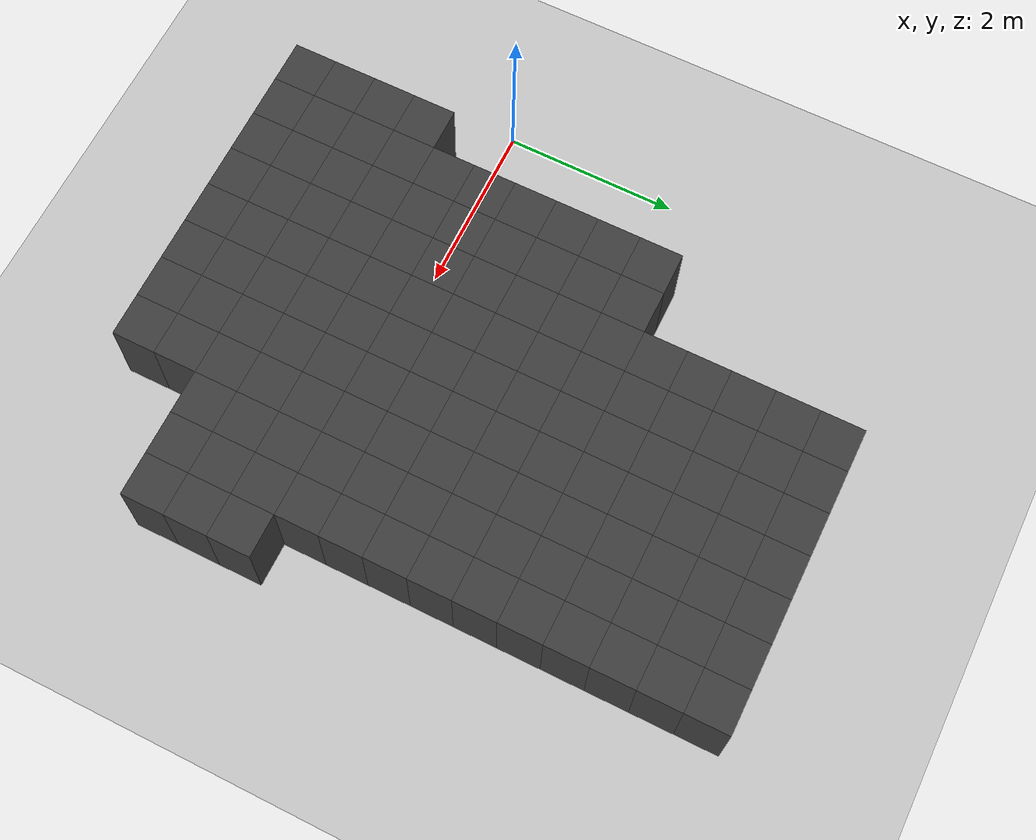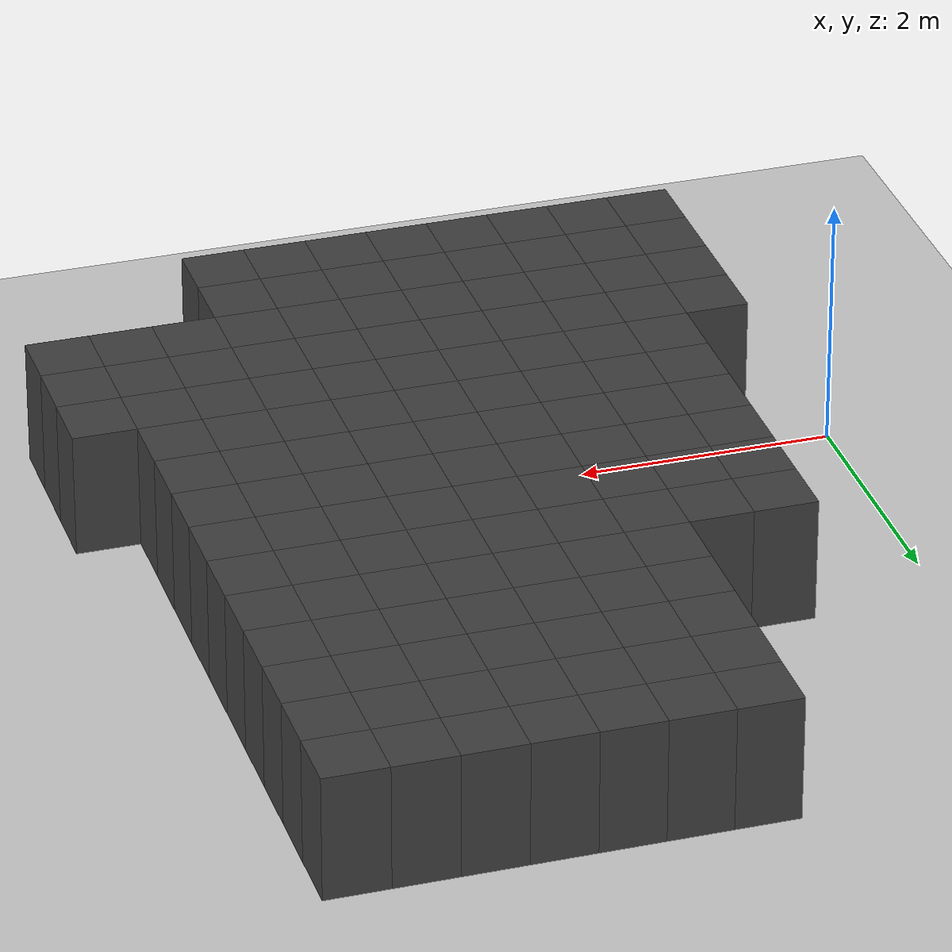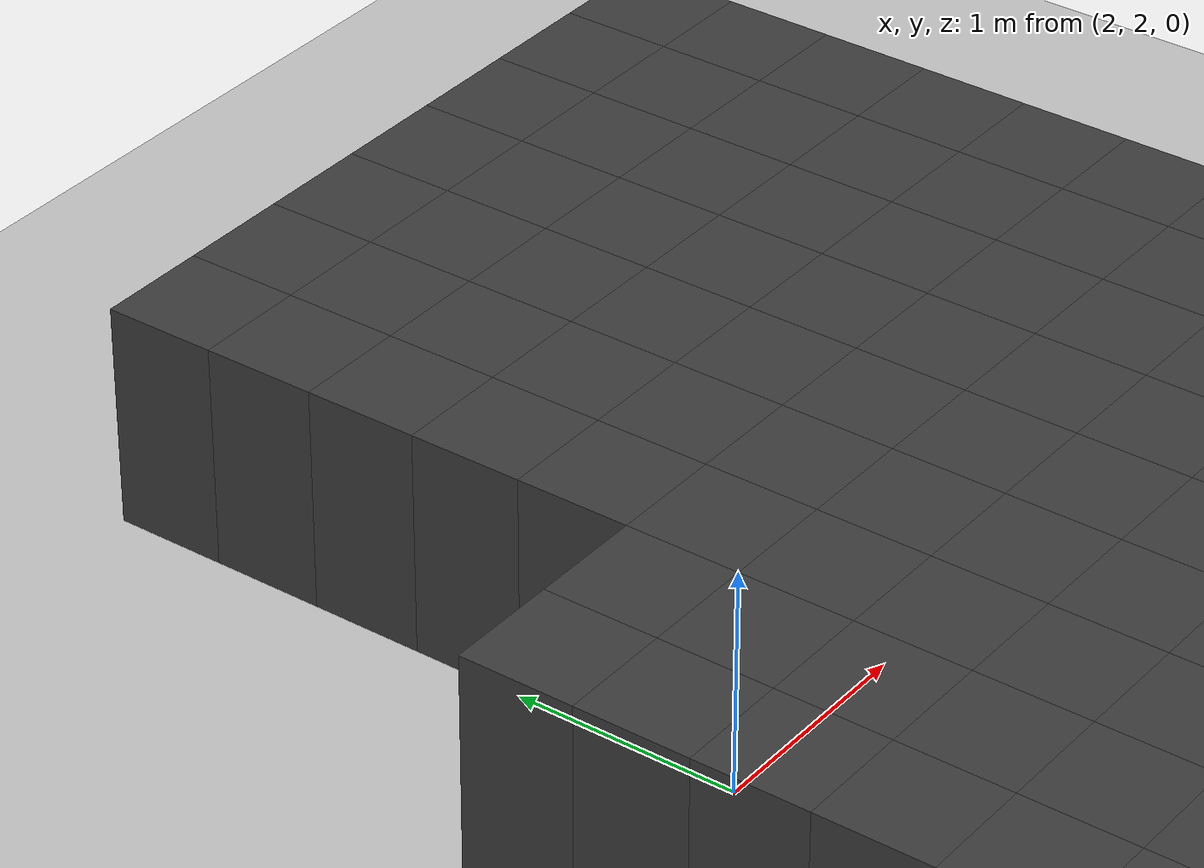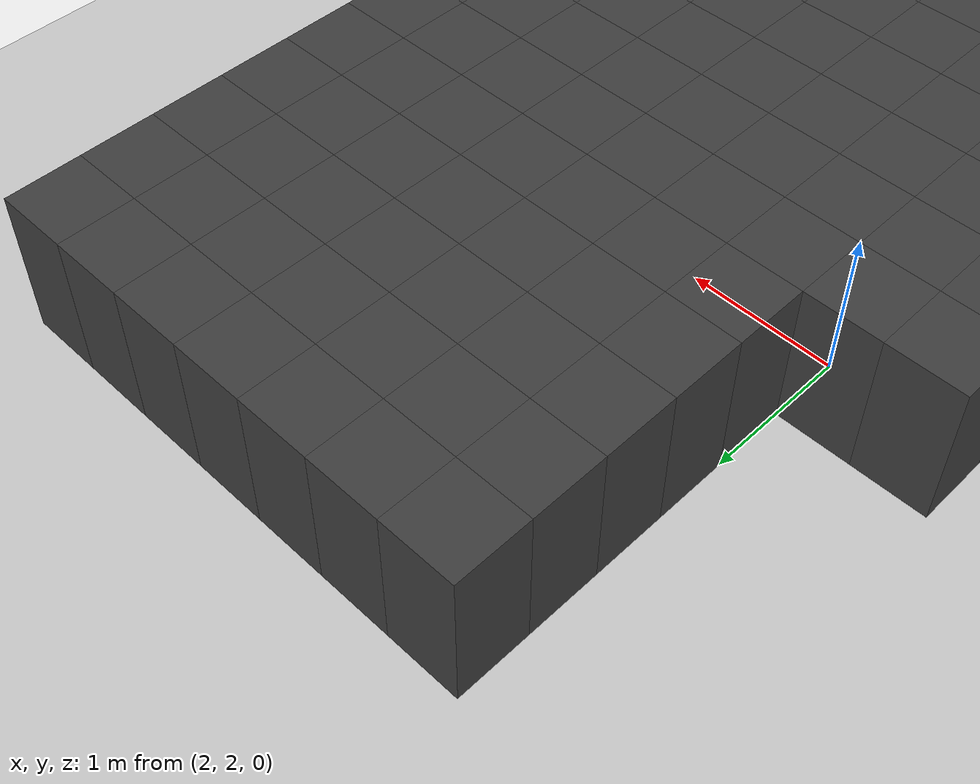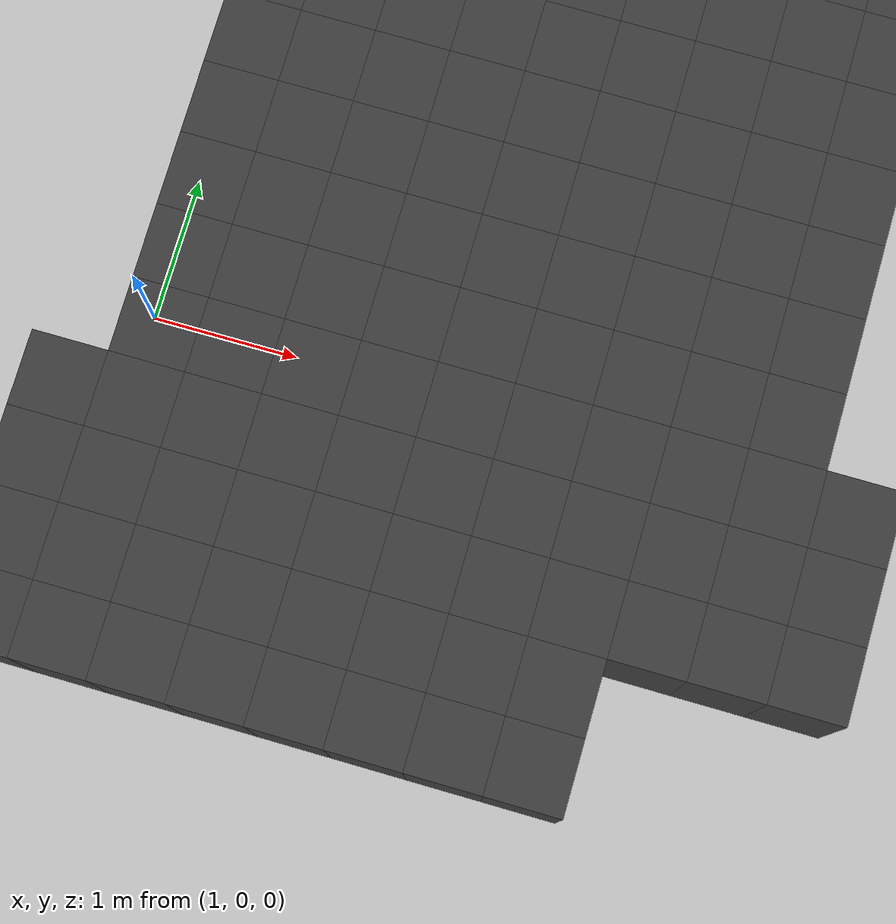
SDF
<sdf version="1.7">
 <world name="map_14980">
  <model name="ground_plane">
   <static>true</static>
   <link name="link">
    <collision name="collision">
     <geometry><plane><normal>0 0 1</normal><size>200 200</size></plane></geometry>
    </collision>
    <visual name="visual">
     <geometry><plane><normal>0 0 1</normal><size>200 200</size></plane></geometry>
     <material><ambient>0.8 0.8 0.8 1</ambient><diffuse>0.8 0.8 0.8 1</diffuse></material>
    </visual>
   </link>
  </model>
  <model name="maze_environment">
   <static>true</static>
   <link name="wall_570">
    <pose>2.250 4.750 0.500 0 0 0</pose>
    <collision name="col"><geometry><box><size>0.5 0.5 1.0</size></box></geometry></collision>
    <visual name="vis">
     <geometry><box><size>0.5 0.5 1.0</size></box></geometry>
     <material><ambient>0.15 0.15 0.15 1</ambient><diffuse>0.25 0.25 0.25 1</diffuse></material>
    </visual>
   </link>
   <link name="wall_571">
    <pose>2.750 4.750 0.500 0 0 0</pose>
    <collision name="col"><geometry><box><size>0.5 0.5 1.0</size></box></geometry></collision>
    <visual name="vis">
     <geometry><box><size>0.5 0.5 1.0</size></box></geometry>
     <material><ambient>0.15 0.15 0.15 1</ambient><diffuse>0.25 0.25 0.25 1</diffuse></material>
    </visual>
   </link>
   <link name="wall_572">
    <pose>3.250 4.750 0.500 0 0 0</pose>
    <collision name="col"><geometry><box><size>0.5 0.5 1.0</size></box></geometry></collision>
    <visual name="vis">
     <geometry><box><size>0.5 0.5 1.0</size></box></geometry>
     <material><ambient>0.15 0.15 0.15 1</ambient><diffuse>0.25 0.25 0.25 1</diffuse></material>
    </visual>
   </link>
   <link name="wall_573">
    <pose>3.750 4.750 0.500 0 0 0</pose>
    <collision name="col"><geometry><box><size>0.5 0.5 1.0</size></box></geometry></collision>
    <visual name="vis">
     <geometry><box><size>0.5 0.5 1.0</size></box></geometry>
     <material><ambient>0.15 0.15 0.15 1</ambient><diffuse>0.25 0.25 0.25 1</diffuse></material>
    </visual>
   </link>
   <link name="wall_574">
    <pose>4.250 4.750 0.500 0 0 0</pose>
    <collision name="col"><geometry><box><size>0.5 0.5 1.0</size></box></geometry></collision>
    <visual name="vis">
     <geometry><box><size>0.5 0.5 1.0</size></box></geometry>
     <material><ambient>0.15 0.15 0.15 1</ambient><diffuse>0.25 0.25 0.25 1</diffuse></material>
    </visual>
   </link>
   <link name="wall_575">
    <pose>4.750 4.750 0.500 0 0 0</pose>
    <collision name="col"><geometry><box><size>0.5 0.5 1.0</size></box></geometry></collision>
    <visual name="vis">
     <geometry><box><size>0.5 0.5 1.0</size></box></geometry>
     <material><ambient>0.15 0.15 0.15 1</ambient><diffuse>0.25 0.25 0.25 1</diffuse></material>
    </visual>
   </link>
   <link name="wall_576">
    <pose>5.250 4.750 0.500 0 0 0</pose>
    <collision name="col"><geometry><box><size>0.5 0.5 1.0</size></box></geometry></collision>
    <visual name="vis">
     <geometry><box><size>0.5 0.5 1.0</size></box></geometry>
     <material><ambient>0.15 0.15 0.15 1</ambient><diffuse>0.25 0.25 0.25 1</diffuse></material>
    </visual>
   </link>
   <link name="wall_593">
    <pose>2.250 4.250 0.500 0 0 0</pose>
    <collision name="col"><geometry><box><size>0.5 0.5 1.0</size></box></geometry></collision>
    <visual name="vis">
     <geometry><box><size>0.5 0.5 1.0</size></box></geometry>
     <material><ambient>0.15 0.15 0.15 1</ambient><diffuse>0.25 0.25 0.25 1</diffuse></material>
    </visual>
   </link>
   <link name="wall_594">
    <pose>2.750 4.250 0.500 0 0 0</pose>
    <collision name="col"><geometry><box><size>0.5 0.5 1.0</size></box></geometry></collision>
    <visual name="vis">
     <geometry><box><size>0.5 0.5 1.0</size></box></geometry>
     <material><ambient>0.15 0.15 0.15 1</ambient><diffuse>0.25 0.25 0.25 1</diffuse></material>
    </visual>
   </link>
   <link name="wall_595">
    <pose>3.250 4.250 0.500 0 0 0</pose>
    <collision name="col"><geometry><box><size>0.5 0.5 1.0</size></box></geometry></collision>
    <visual name="vis">
     <geometry><box><size>0.5 0.5 1.0</size></box></geometry>
     <material><ambient>0.15 0.15 0.15 1</ambient><diffuse>0.25 0.25 0.25 1</diffuse></material>
    </visual>
   </link>
   <link name="wall_596">
    <pose>3.750 4.250 0.500 0 0 0</pose>
    <collision name="col"><geometry><box><size>0.5 0.5 1.0</size></box></geometry></collision>
    <visual name="vis">
     <geometry><box><size>0.5 0.5 1.0</size></box></geometry>
     <material><ambient>0.15 0.15 0.15 1</ambient><diffuse>0.25 0.25 0.25 1</diffuse></material>
    </visual>
   </link>
   <link name="wall_597">
    <pose>4.250 4.250 0.500 0 0 0</pose>
    <collision name="col"><geometry><box><size>0.5 0.5 1.0</size></box></geometry></collision>
    <visual name="vis">
     <geometry><box><size>0.5 0.5 1.0</size></box></geometry>
     <material><ambient>0.15 0.15 0.15 1</ambient><diffuse>0.25 0.25 0.25 1</diffuse></material>
    </visual>
   </link>
   <link name="wall_598">
    <pose>4.750 4.250 0.500 0 0 0</pose>
    <collision name="col"><geometry><box><size>0.5 0.5 1.0</size></box></geometry></collision>
    <visual name="vis">
     <geometry><box><size>0.5 0.5 1.0</size></box></geometry>
     <material><ambient>0.15 0.15 0.15 1</ambient><diffuse>0.25 0.25 0.25 1</diffuse></material>
    </visual>
   </link>
   <link name="wall_599">
    <pose>5.250 4.250 0.500 0 0 0</pose>
    <collision name="col"><geometry><box><size>0.5 0.5 1.0</size></box></geometry></collision>
    <visual name="vis">
     <geometry><box><size>0.5 0.5 1.0</size></box></geometry>
     <material><ambient>0.15 0.15 0.15 1</ambient><diffuse>0.25 0.25 0.25 1</diffuse></material>
    </visual>
   </link>
   <link name="wall_617">
    <pose>2.250 3.750 0.500 0 0 0</pose>
    <collision name="col"><geometry><box><size>0.5 0.5 1.0</size></box></geometry></collision>
    <visual name="vis">
     <geometry><box><size>0.5 0.5 1.0</size></box></geometry>
     <material><ambient>0.15 0.15 0.15 1</ambient><diffuse>0.25 0.25 0.25 1</diffuse></material>
    </visual>
   </link>
   <link name="wall_618">
    <pose>2.750 3.750 0.500 0 0 0</pose>
    <collision name="col"><geometry><box><size>0.5 0.5 1.0</size></box></geometry></collision>
    <visual name="vis">
     <geometry><box><size>0.5 0.5 1.0</size></box></geometry>
     <material><ambient>0.15 0.15 0.15 1</ambient><diffuse>0.25 0.25 0.25 1</diffuse></material>
    </visual>
   </link>
   <link name="wall_619">
    <pose>3.250 3.750 0.500 0 0 0</pose>
    <collision name="col"><geometry><box><size>0.5 0.5 1.0</size></box></geometry></collision>
    <visual name="vis">
     <geometry><box><size>0.5 0.5 1.0</size></box></geometry>
     <material><ambient>0.15 0.15 0.15 1</ambient><diffuse>0.25 0.25 0.25 1</diffuse></material>
    </visual>
   </link>
   <link name="wall_620">
    <pose>3.750 3.750 0.500 0 0 0</pose>
    <collision name="col"><geometry><box><size>0.5 0.5 1.0</size></box></geometry></collision>
    <visual name="vis">
     <geometry><box><size>0.5 0.5 1.0</size></box></geometry>
     <material><ambient>0.15 0.15 0.15 1</ambient><diffuse>0.25 0.25 0.25 1</diffuse></material>
    </visual>
   </link>
   <link name="wall_621">
    <pose>4.250 3.750 0.500 0 0 0</pose>
    <collision name="col"><geometry><box><size>0.5 0.5 1.0</size></box></geometry></collision>
    <visual name="vis">
     <geometry><box><size>0.5 0.5 1.0</size></box></geometry>
     <material><ambient>0.15 0.15 0.15 1</ambient><diffuse>0.25 0.25 0.25 1</diffuse></material>
    </visual>
   </link>
   <link name="wall_622">
    <pose>4.750 3.750 0.500 0 0 0</pose>
    <collision name="col"><geometry><box><size>0.5 0.5 1.0</size></box></geometry></collision>
    <visual name="vis">
     <geometry><box><size>0.5 0.5 1.0</size></box></geometry>
     <material><ambient>0.15 0.15 0.15 1</ambient><diffuse>0.25 0.25 0.25 1</diffuse></material>
    </visual>
   </link>
   <link name="wall_623">
    <pose>5.250 3.750 0.500 0 0 0</pose>
    <collision name="col"><geometry><box><size>0.5 0.5 1.0</size></box></geometry></collision>
    <visual name="vis">
     <geometry><box><size>0.5 0.5 1.0</size></box></geometry>
     <material><ambient>0.15 0.15 0.15 1</ambient><diffuse>0.25 0.25 0.25 1</diffuse></material>
    </visual>
   </link>
   <link name="wall_647">
    <pose>2.250 3.250 0.500 0 0 0</pose>
    <collision name="col"><geometry><box><size>0.5 0.5 1.0</size></box></geometry></collision>
    <visual name="vis">
     <geometry><box><size>0.5 0.5 1.0</size></box></geometry>
     <material><ambient>0.15 0.15 0.15 1</ambient><diffuse>0.25 0.25 0.25 1</diffuse></material>
    </visual>
   </link>
   <link name="wall_648">
    <pose>2.750 3.250 0.500 0 0 0</pose>
    <collision name="col"><geometry><box><size>0.5 0.5 1.0</size></box></geometry></collision>
    <visual name="vis">
     <geometry><box><size>0.5 0.5 1.0</size></box></geometry>
     <material><ambient>0.15 0.15 0.15 1</ambient><diffuse>0.25 0.25 0.25 1</diffuse></material>
    </visual>
   </link>
   <link name="wall_649">
    <pose>3.250 3.250 0.500 0 0 0</pose>
    <collision name="col"><geometry><box><size>0.5 0.5 1.0</size></box></geometry></collision>
    <visual name="vis">
     <geometry><box><size>0.5 0.5 1.0</size></box></geometry>
     <material><ambient>0.15 0.15 0.15 1</ambient><diffuse>0.25 0.25 0.25 1</diffuse></material>
    </visual>
   </link>
   <link name="wall_650">
    <pose>3.750 3.250 0.500 0 0 0</pose>
    <collision name="col"><geometry><box><size>0.5 0.5 1.0</size></box></geometry></collision>
    <visual name="vis">
     <geometry><box><size>0.5 0.5 1.0</size></box></geometry>
     <material><ambient>0.15 0.15 0.15 1</ambient><diffuse>0.25 0.25 0.25 1</diffuse></material>
    </visual>
   </link>
   <link name="wall_651">
    <pose>4.250 3.250 0.500 0 0 0</pose>
    <collision name="col"><geometry><box><size>0.5 0.5 1.0</size></box></geometry></collision>
    <visual name="vis">
     <geometry><box><size>0.5 0.5 1.0</size></box></geometry>
     <material><ambient>0.15 0.15 0.15 1</ambient><diffuse>0.25 0.25 0.25 1</diffuse></material>
    </visual>
   </link>
   <link name="wall_652">
    <pose>4.750 3.250 0.500 0 0 0</pose>
    <collision name="col"><geometry><box><size>0.5 0.5 1.0</size></box></geometry></collision>
    <visual name="vis">
     <geometry><box><size>0.5 0.5 1.0</size></box></geometry>
     <material><ambient>0.15 0.15 0.15 1</ambient><diffuse>0.25 0.25 0.25 1</diffuse></material>
    </visual>
   </link>
   <link name="wall_653">
    <pose>5.250 3.250 0.500 0 0 0</pose>
    <collision name="col"><geometry><box><size>0.5 0.5 1.0</size></box></geometry></collision>
    <visual name="vis">
     <geometry><box><size>0.5 0.5 1.0</size></box></geometry>
     <material><ambient>0.15 0.15 0.15 1</ambient><diffuse>0.25 0.25 0.25 1</diffuse></material>
    </visual>
   </link>
   <link name="wall_684">
    <pose>2.250 2.750 0.500 0 0 0</pose>
    <collision name="col"><geometry><box><size>0.5 0.5 1.0</size></box></geometry></collision>
    <visual name="vis">
     <geometry><box><size>0.5 0.5 1.0</size></box></geometry>
     <material><ambient>0.15 0.15 0.15 1</ambient><diffuse>0.25 0.25 0.25 1</diffuse></material>
    </visual>
   </link>
   <link name="wall_685">
    <pose>2.750 2.750 0.500 0 0 0</pose>
    <collision name="col"><geometry><box><size>0.5 0.5 1.0</size></box></geometry></collision>
    <visual name="vis">
     <geometry><box><size>0.5 0.5 1.0</size></box></geometry>
     <material><ambient>0.15 0.15 0.15 1</ambient><diffuse>0.25 0.25 0.25 1</diffuse></material>
    </visual>
   </link>
   <link name="wall_686">
    <pose>3.250 2.750 0.500 0 0 0</pose>
    <collision name="col"><geometry><box><size>0.5 0.5 1.0</size></box></geometry></collision>
    <visual name="vis">
     <geometry><box><size>0.5 0.5 1.0</size></box></geometry>
     <material><ambient>0.15 0.15 0.15 1</ambient><diffuse>0.25 0.25 0.25 1</diffuse></material>
    </visual>
   </link>
   <link name="wall_687">
    <pose>3.750 2.750 0.500 0 0 0</pose>
    <collision name="col"><geometry><box><size>0.5 0.5 1.0</size></box></geometry></collision>
    <visual name="vis">
     <geometry><box><size>0.5 0.5 1.0</size></box></geometry>
     <material><ambient>0.15 0.15 0.15 1</ambient><diffuse>0.25 0.25 0.25 1</diffuse></material>
    </visual>
   </link>
   <link name="wall_688">
    <pose>4.250 2.750 0.500 0 0 0</pose>
    <collision name="col"><geometry><box><size>0.5 0.5 1.0</size></box></geometry></collision>
    <visual name="vis">
     <geometry><box><size>0.5 0.5 1.0</size></box></geometry>
     <material><ambient>0.15 0.15 0.15 1</ambient><diffuse>0.25 0.25 0.25 1</diffuse></material>
    </visual>
   </link>
   <link name="wall_689">
    <pose>4.750 2.750 0.500 0 0 0</pose>
    <collision name="col"><geometry><box><size>0.5 0.5 1.0</size></box></geometry></collision>
    <visual name="vis">
     <geometry><box><size>0.5 0.5 1.0</size></box></geometry>
     <material><ambient>0.15 0.15 0.15 1</ambient><diffuse>0.25 0.25 0.25 1</diffuse></material>
    </visual>
   </link>
   <link name="wall_690">
    <pose>5.250 2.750 0.500 0 0 0</pose>
    <collision name="col"><geometry><box><size>0.5 0.5 1.0</size></box></geometry></collision>
    <visual name="vis">
     <geometry><box><size>0.5 0.5 1.0</size></box></geometry>
     <material><ambient>0.15 0.15 0.15 1</ambient><diffuse>0.25 0.25 0.25 1</diffuse></material>
    </visual>
   </link>
   <link name="wall_721">
    <pose>1.250 2.250 0.500 0 0 0</pose>
    <collision name="col"><geometry><box><size>0.5 0.5 1.0</size></box></geometry></collision>
    <visual name="vis">
     <geometry><box><size>0.5 0.5 1.0</size></box></geometry>
     <material><ambient>0.15 0.15 0.15 1</ambient><diffuse>0.25 0.25 0.25 1</diffuse></material>
    </visual>
   </link>
   <link name="wall_722">
    <pose>1.750 2.250 0.500 0 0 0</pose>
    <collision name="col"><geometry><box><size>0.5 0.5 1.0</size></box></geometry></collision>
    <visual name="vis">
     <geometry><box><size>0.5 0.5 1.0</size></box></geometry>
     <material><ambient>0.15 0.15 0.15 1</ambient><diffuse>0.25 0.25 0.25 1</diffuse></material>
    </visual>
   </link>
   <link name="wall_723">
    <pose>2.250 2.250 0.500 0 0 0</pose>
    <collision name="col"><geometry><box><size>0.5 0.5 1.0</size></box></geometry></collision>
    <visual name="vis">
     <geometry><box><size>0.5 0.5 1.0</size></box></geometry>
     <material><ambient>0.15 0.15 0.15 1</ambient><diffuse>0.25 0.25 0.25 1</diffuse></material>
    </visual>
   </link>
   <link name="wall_724">
    <pose>2.750 2.250 0.500 0 0 0</pose>
    <collision name="col"><geometry><box><size>0.5 0.5 1.0</size></box></geometry></collision>
    <visual name="vis">
     <geometry><box><size>0.5 0.5 1.0</size></box></geometry>
     <material><ambient>0.15 0.15 0.15 1</ambient><diffuse>0.25 0.25 0.25 1</diffuse></material>
    </visual>
   </link>
   <link name="wall_725">
    <pose>3.250 2.250 0.500 0 0 0</pose>
    <collision name="col"><geometry><box><size>0.5 0.5 1.0</size></box></geometry></collision>
    <visual name="vis">
     <geometry><box><size>0.5 0.5 1.0</size></box></geometry>
     <material><ambient>0.15 0.15 0.15 1</ambient><diffuse>0.25 0.25 0.25 1</diffuse></material>
    </visual>
   </link>
   <link name="wall_726">
    <pose>3.750 2.250 0.500 0 0 0</pose>
    <collision name="col"><geometry><box><size>0.5 0.5 1.0</size></box></geometry></collision>
    <visual name="vis">
     <geometry><box><size>0.5 0.5 1.0</size></box></geometry>
     <material><ambient>0.15 0.15 0.15 1</ambient><diffuse>0.25 0.25 0.25 1</diffuse></material>
    </visual>
   </link>
   <link name="wall_727">
    <pose>4.250 2.250 0.500 0 0 0</pose>
    <collision name="col"><geometry><box><size>0.5 0.5 1.0</size></box></geometry></collision>
    <visual name="vis">
     <geometry><box><size>0.5 0.5 1.0</size></box></geometry>
     <material><ambient>0.15 0.15 0.15 1</ambient><diffuse>0.25 0.25 0.25 1</diffuse></material>
    </visual>
   </link>
   <link name="wall_728">
    <pose>4.750 2.250 0.500 0 0 0</pose>
    <collision name="col"><geometry><box><size>0.5 0.5 1.0</size></box></geometry></collision>
    <visual name="vis">
     <geometry><box><size>0.5 0.5 1.0</size></box></geometry>
     <material><ambient>0.15 0.15 0.15 1</ambient><diffuse>0.25 0.25 0.25 1</diffuse></material>
    </visual>
   </link>
   <link name="wall_729">
    <pose>5.250 2.250 0.500 0 0 0</pose>
    <collision name="col"><geometry><box><size>0.5 0.5 1.0</size></box></geometry></collision>
    <visual name="vis">
     <geometry><box><size>0.5 0.5 1.0</size></box></geometry>
     <material><ambient>0.15 0.15 0.15 1</ambient><diffuse>0.25 0.25 0.25 1</diffuse></material>
    </visual>
   </link>
   <link name="wall_755">
    <pose>1.250 1.750 0.500 0 0 0</pose>
    <collision name="col"><geometry><box><size>0.5 0.5 1.0</size></box></geometry></collision>
    <visual name="vis">
     <geometry><box><size>0.5 0.5 1.0</size></box></geometry>
     <material><ambient>0.15 0.15 0.15 1</ambient><diffuse>0.25 0.25 0.25 1</diffuse></material>
    </visual>
   </link>
   <link name="wall_756">
    <pose>1.750 1.750 0.500 0 0 0</pose>
    <collision name="col"><geometry><box><size>0.5 0.5 1.0</size></box></geometry></collision>
    <visual name="vis">
     <geometry><box><size>0.5 0.5 1.0</size></box></geometry>
     <material><ambient>0.15 0.15 0.15 1</ambient><diffuse>0.25 0.25 0.25 1</diffuse></material>
    </visual>
   </link>
   <link name="wall_757">
    <pose>2.250 1.750 0.500 0 0 0</pose>
    <collision name="col"><geometry><box><size>0.5 0.5 1.0</size></box></geometry></collision>
    <visual name="vis">
     <geometry><box><size>0.5 0.5 1.0</size></box></geometry>
     <material><ambient>0.15 0.15 0.15 1</ambient><diffuse>0.25 0.25 0.25 1</diffuse></material>
    </visual>
   </link>
   <link name="wall_758">
    <pose>2.750 1.750 0.500 0 0 0</pose>
    <collision name="col"><geometry><box><size>0.5 0.5 1.0</size></box></geometry></collision>
    <visual name="vis">
     <geometry><box><size>0.5 0.5 1.0</size></box></geometry>
     <material><ambient>0.15 0.15 0.15 1</ambient><diffuse>0.25 0.25 0.25 1</diffuse></material>
    </visual>
   </link>
   <link name="wall_759">
    <pose>3.250 1.750 0.500 0 0 0</pose>
    <collision name="col"><geometry><box><size>0.5 0.5 1.0</size></box></geometry></collision>
    <visual name="vis">
     <geometry><box><size>0.5 0.5 1.0</size></box></geometry>
     <material><ambient>0.15 0.15 0.15 1</ambient><diffuse>0.25 0.25 0.25 1</diffuse></material>
    </visual>
   </link>
   <link name="wall_760">
    <pose>3.750 1.750 0.500 0 0 0</pose>
    <collision name="col"><geometry><box><size>0.5 0.5 1.0</size></box></geometry></collision>
    <visual name="vis">
     <geometry><box><size>0.5 0.5 1.0</size></box></geometry>
     <material><ambient>0.15 0.15 0.15 1</ambient><diffuse>0.25 0.25 0.25 1</diffuse></material>
    </visual>
   </link>
   <link name="wall_761">
    <pose>4.250 1.750 0.500 0 0 0</pose>
    <collision name="col"><geometry><box><size>0.5 0.5 1.0</size></box></geometry></collision>
    <visual name="vis">
     <geometry><box><size>0.5 0.5 1.0</size></box></geometry>
     <material><ambient>0.15 0.15 0.15 1</ambient><diffuse>0.25 0.25 0.25 1</diffuse></material>
    </visual>
   </link>
   <link name="wall_762">
    <pose>4.750 1.750 0.500 0 0 0</pose>
    <collision name="col"><geometry><box><size>0.5 0.5 1.0</size></box></geometry></collision>
    <visual name="vis">
     <geometry><box><size>0.5 0.5 1.0</size></box></geometry>
     <material><ambient>0.15 0.15 0.15 1</ambient><diffuse>0.25 0.25 0.25 1</diffuse></material>
    </visual>
   </link>
   <link name="wall_763">
    <pose>5.250 1.750 0.500 0 0 0</pose>
    <collision name="col"><geometry><box><size>0.5 0.5 1.0</size></box></geometry></collision>
    <visual name="vis">
     <geometry><box><size>0.5 0.5 1.0</size></box></geometry>
     <material><ambient>0.15 0.15 0.15 1</ambient><diffuse>0.25 0.25 0.25 1</diffuse></material>
    </visual>
   </link>
   <link name="wall_787">
    <pose>1.250 1.250 0.500 0 0 0</pose>
    <collision name="col"><geometry><box><size>0.5 0.5 1.0</size></box></geometry></collision>
    <visual name="vis">
     <geometry><box><size>0.5 0.5 1.0</size></box></geometry>
     <material><ambient>0.15 0.15 0.15 1</ambient><diffuse>0.25 0.25 0.25 1</diffuse></material>
    </visual>
   </link>
   <link name="wall_788">
    <pose>1.750 1.250 0.500 0 0 0</pose>
    <collision name="col"><geometry><box><size>0.5 0.5 1.0</size></box></geometry></collision>
    <visual name="vis">
     <geometry><box><size>0.5 0.5 1.0</size></box></geometry>
     <material><ambient>0.15 0.15 0.15 1</ambient><diffuse>0.25 0.25 0.25 1</diffuse></material>
    </visual>
   </link>
   <link name="wall_789">
    <pose>2.250 1.250 0.500 0 0 0</pose>
    <collision name="col"><geometry><box><size>0.5 0.5 1.0</size></box></geometry></collision>
    <visual name="vis">
     <geometry><box><size>0.5 0.5 1.0</size></box></geometry>
     <material><ambient>0.15 0.15 0.15 1</ambient><diffuse>0.25 0.25 0.25 1</diffuse></material>
    </visual>
   </link>
   <link name="wall_790">
    <pose>2.750 1.250 0.500 0 0 0</pose>
    <collision name="col"><geometry><box><size>0.5 0.5 1.0</size></box></geometry></collision>
    <visual name="vis">
     <geometry><box><size>0.5 0.5 1.0</size></box></geometry>
     <material><ambient>0.15 0.15 0.15 1</ambient><diffuse>0.25 0.25 0.25 1</diffuse></material>
    </visual>
   </link>
   <link name="wall_791">
    <pose>3.250 1.250 0.500 0 0 0</pose>
    <collision name="col"><geometry><box><size>0.5 0.5 1.0</size></box></geometry></collision>
    <visual name="vis">
     <geometry><box><size>0.5 0.5 1.0</size></box></geometry>
     <material><ambient>0.15 0.15 0.15 1</ambient><diffuse>0.25 0.25 0.25 1</diffuse></material>
    </visual>
   </link>
   <link name="wall_792">
    <pose>3.750 1.250 0.500 0 0 0</pose>
    <collision name="col"><geometry><box><size>0.5 0.5 1.0</size></box></geometry></collision>
    <visual name="vis">
     <geometry><box><size>0.5 0.5 1.0</size></box></geometry>
     <material><ambient>0.15 0.15 0.15 1</ambient><diffuse>0.25 0.25 0.25 1</diffuse></material>
    </visual>
   </link>
   <link name="wall_793">
    <pose>4.250 1.250 0.500 0 0 0</pose>
    <collision name="col"><geometry><box><size>0.5 0.5 1.0</size></box></geometry></collision>
    <visual name="vis">
     <geometry><box><size>0.5 0.5 1.0</size></box></geometry>
     <material><ambient>0.15 0.15 0.15 1</ambient><diffuse>0.25 0.25 0.25 1</diffuse></material>
    </visual>
   </link>
   <link name="wall_794">
    <pose>4.750 1.250 0.500 0 0 0</pose>
    <collision name="col"><geometry><box><size>0.5 0.5 1.0</size></box></geometry></collision>
    <visual name="vis">
     <geometry><box><size>0.5 0.5 1.0</size></box></geometry>
     <material><ambient>0.15 0.15 0.15 1</ambient><diffuse>0.25 0.25 0.25 1</diffuse></material>
    </visual>
   </link>
   <link name="wall_795">
    <pose>5.250 1.250 0.500 0 0 0</pose>
    <collision name="col"><geometry><box><size>0.5 0.5 1.0</size></box></geometry></collision>
    <visual name="vis">
     <geometry><box><size>0.5 0.5 1.0</size></box></geometry>
     <material><ambient>0.15 0.15 0.15 1</ambient><diffuse>0.25 0.25 0.25 1</diffuse></material>
    </visual>
   </link>
   <link name="wall_819">
    <pose>1.250 0.750 0.500 0 0 0</pose>
    <collision name="col"><geometry><box><size>0.5 0.5 1.0</size></box></geometry></collision>
    <visual name="vis">
     <geometry><box><size>0.5 0.5 1.0</size></box></geometry>
     <material><ambient>0.15 0.15 0.15 1</ambient><diffuse>0.25 0.25 0.25 1</diffuse></material>
    </visual>
   </link>
   <link name="wall_820">
    <pose>1.750 0.750 0.500 0 0 0</pose>
    <collision name="col"><geometry><box><size>0.5 0.5 1.0</size></box></geometry></collision>
    <visual name="vis">
     <geometry><box><size>0.5 0.5 1.0</size></box></geometry>
     <material><ambient>0.15 0.15 0.15 1</ambient><diffuse>0.25 0.25 0.25 1</diffuse></material>
    </visual>
   </link>
   <link name="wall_821">
    <pose>2.250 0.750 0.500 0 0 0</pose>
    <collision name="col"><geometry><box><size>0.5 0.5 1.0</size></box></geometry></collision>
    <visual name="vis">
     <geometry><box><size>0.5 0.5 1.0</size></box></geometry>
     <material><ambient>0.15 0.15 0.15 1</ambient><diffuse>0.25 0.25 0.25 1</diffuse></material>
    </visual>
   </link>
   <link name="wall_822">
    <pose>2.750 0.750 0.500 0 0 0</pose>
    <collision name="col"><geometry><box><size>0.5 0.5 1.0</size></box></geometry></collision>
    <visual name="vis">
     <geometry><box><size>0.5 0.5 1.0</size></box></geometry>
     <material><ambient>0.15 0.15 0.15 1</ambient><diffuse>0.25 0.25 0.25 1</diffuse></material>
    </visual>
   </link>
   <link name="wall_823">
    <pose>3.250 0.750 0.500 0 0 0</pose>
    <collision name="col"><geometry><box><size>0.5 0.5 1.0</size></box></geometry></collision>
    <visual name="vis">
     <geometry><box><size>0.5 0.5 1.0</size></box></geometry>
     <material><ambient>0.15 0.15 0.15 1</ambient><diffuse>0.25 0.25 0.25 1</diffuse></material>
    </visual>
   </link>
   <link name="wall_824">
    <pose>3.750 0.750 0.500 0 0 0</pose>
    <collision name="col"><geometry><box><size>0.5 0.5 1.0</size></box></geometry></collision>
    <visual name="vis">
     <geometry><box><size>0.5 0.5 1.0</size></box></geometry>
     <material><ambient>0.15 0.15 0.15 1</ambient><diffuse>0.25 0.25 0.25 1</diffuse></material>
    </visual>
   </link>
   <link name="wall_825">
    <pose>4.250 0.750 0.500 0 0 0</pose>
    <collision name="col"><geometry><box><size>0.5 0.5 1.0</size></box></geometry></collision>
    <visual name="vis">
     <geometry><box><size>0.5 0.5 1.0</size></box></geometry>
     <material><ambient>0.15 0.15 0.15 1</ambient><diffuse>0.25 0.25 0.25 1</diffuse></material>
    </visual>
   </link>
   <link name="wall_826">
    <pose>4.750 0.750 0.500 0 0 0</pose>
    <collision name="col"><geometry><box><size>0.5 0.5 1.0</size></box></geometry></collision>
    <visual name="vis">
     <geometry><box><size>0.5 0.5 1.0</size></box></geometry>
     <material><ambient>0.15 0.15 0.15 1</ambient><diffuse>0.25 0.25 0.25 1</diffuse></material>
    </visual>
   </link>
   <link name="wall_827">
    <pose>5.250 0.750 0.500 0 0 0</pose>
    <collision name="col"><geometry><box><size>0.5 0.5 1.0</size></box></geometry></collision>
    <visual name="vis">
     <geometry><box><size>0.5 0.5 1.0</size></box></geometry>
     <material><ambient>0.15 0.15 0.15 1</ambient><diffuse>0.25 0.25 0.25 1</diffuse></material>
    </visual>
   </link>
   <link name="wall_848">
    <pose>1.250 0.250 0.500 0 0 0</pose>
    <collision name="col"><geometry><box><size>0.5 0.5 1.0</size></box></geometry></collision>
    <visual name="vis">
     <geometry><box><size>0.5 0.5 1.0</size></box></geometry>
     <material><ambient>0.15 0.15 0.15 1</ambient><diffuse>0.25 0.25 0.25 1</diffuse></material>
    </visual>
   </link>
   <link name="wall_849">
    <pose>1.750 0.250 0.500 0 0 0</pose>
    <collision name="col"><geometry><box><size>0.5 0.5 1.0</size></box></geometry></collision>
    <visual name="vis">
     <geometry><box><size>0.5 0.5 1.0</size></box></geometry>
     <material><ambient>0.15 0.15 0.15 1</ambient><diffuse>0.25 0.25 0.25 1</diffuse></material>
    </visual>
   </link>
   <link name="wall_850">
    <pose>2.250 0.250 0.500 0 0 0</pose>
    <collision name="col"><geometry><box><size>0.5 0.5 1.0</size></box></geometry></collision>
    <visual name="vis">
     <geometry><box><size>0.5 0.5 1.0</size></box></geometry>
     <material><ambient>0.15 0.15 0.15 1</ambient><diffuse>0.25 0.25 0.25 1</diffuse></material>
    </visual>
   </link>
   <link name="wall_851">
    <pose>2.750 0.250 0.500 0 0 0</pose>
    <collision name="col"><geometry><box><size>0.5 0.5 1.0</size></box></geometry></collision>
    <visual name="vis">
     <geometry><box><size>0.5 0.5 1.0</size></box></geometry>
     <material><ambient>0.15 0.15 0.15 1</ambient><diffuse>0.25 0.25 0.25 1</diffuse></material>
    </visual>
   </link>
   <link name="wall_852">
    <pose>3.250 0.250 0.500 0 0 0</pose>
    <collision name="col"><geometry><box><size>0.5 0.5 1.0</size></box></geometry></collision>
    <visual name="vis">
     <geometry><box><size>0.5 0.5 1.0</size></box></geometry>
     <material><ambient>0.15 0.15 0.15 1</ambient><diffuse>0.25 0.25 0.25 1</diffuse></material>
    </visual>
   </link>
   <link name="wall_853">
    <pose>3.750 0.250 0.500 0 0 0</pose>
    <collision name="col"><geometry><box><size>0.5 0.5 1.0</size></box></geometry></collision>
    <visual name="vis">
     <geometry><box><size>0.5 0.5 1.0</size></box></geometry>
     <material><ambient>0.15 0.15 0.15 1</ambient><diffuse>0.25 0.25 0.25 1</diffuse></material>
    </visual>
   </link>
   <link name="wall_854">
    <pose>4.250 0.250 0.500 0 0 0</pose>
    <collision name="col"><geometry><box><size>0.5 0.5 1.0</size></box></geometry></collision>
    <visual name="vis">
     <geometry><box><size>0.5 0.5 1.0</size></box></geometry>
     <material><ambient>0.15 0.15 0.15 1</ambient><diffuse>0.25 0.25 0.25 1</diffuse></material>
    </visual>
   </link>
   <link name="wall_855">
    <pose>4.750 0.250 0.500 0 0 0</pose>
    <collision name="col"><geometry><box><size>0.5 0.5 1.0</size></box></geometry></collision>
    <visual name="vis">
     <geometry><box><size>0.5 0.5 1.0</size></box></geometry>
     <material><ambient>0.15 0.15 0.15 1</ambient><diffuse>0.25 0.25 0.25 1</diffuse></material>
    </visual>
   </link>
   <link name="wall_856">
    <pose>5.250 0.250 0.500 0 0 0</pose>
    <collision name="col"><geometry><box><size>0.5 0.5 1.0</size></box></geometry></collision>
    <visual name="vis">
     <geometry><box><size>0.5 0.5 1.0</size></box></geometry>
     <material><ambient>0.15 0.15 0.15 1</ambient><diffuse>0.25 0.25 0.25 1</diffuse></material>
    </visual>
   </link>
   <link name="wall_887">
    <pose>1.250 -0.250 0.500 0 0 0</pose>
    <collision name="col"><geometry><box><size>0.5 0.5 1.0</size></box></geometry></collision>
    <visual name="vis">
     <geometry><box><size>0.5 0.5 1.0</size></box></geometry>
     <material><ambient>0.15 0.15 0.15 1</ambient><diffuse>0.25 0.25 0.25 1</diffuse></material>
    </visual>
   </link>
   <link name="wall_888">
    <pose>1.750 -0.250 0.500 0 0 0</pose>
    <collision name="col"><geometry><box><size>0.5 0.5 1.0</size></box></geometry></collision>
    <visual name="vis">
     <geometry><box><size>0.5 0.5 1.0</size></box></geometry>
     <material><ambient>0.15 0.15 0.15 1</ambient><diffuse>0.25 0.25 0.25 1</diffuse></material>
    </visual>
   </link>
   <link name="wall_889">
    <pose>2.250 -0.250 0.500 0 0 0</pose>
    <collision name="col"><geometry><box><size>0.5 0.5 1.0</size></box></geometry></collision>
    <visual name="vis">
     <geometry><box><size>0.5 0.5 1.0</size></box></geometry>
     <material><ambient>0.15 0.15 0.15 1</ambient><diffuse>0.25 0.25 0.25 1</diffuse></material>
    </visual>
   </link>
   <link name="wall_890">
    <pose>2.750 -0.250 0.500 0 0 0</pose>
    <collision name="col"><geometry><box><size>0.5 0.5 1.0</size></box></geometry></collision>
    <visual name="vis">
     <geometry><box><size>0.5 0.5 1.0</size></box></geometry>
     <material><ambient>0.15 0.15 0.15 1</ambient><diffuse>0.25 0.25 0.25 1</diffuse></material>
    </visual>
   </link>
   <link name="wall_891">
    <pose>3.250 -0.250 0.500 0 0 0</pose>
    <collision name="col"><geometry><box><size>0.5 0.5 1.0</size></box></geometry></collision>
    <visual name="vis">
     <geometry><box><size>0.5 0.5 1.0</size></box></geometry>
     <material><ambient>0.15 0.15 0.15 1</ambient><diffuse>0.25 0.25 0.25 1</diffuse></material>
    </visual>
   </link>
   <link name="wall_892">
    <pose>3.750 -0.250 0.500 0 0 0</pose>
    <collision name="col"><geometry><box><size>0.5 0.5 1.0</size></box></geometry></collision>
    <visual name="vis">
     <geometry><box><size>0.5 0.5 1.0</size></box></geometry>
     <material><ambient>0.15 0.15 0.15 1</ambient><diffuse>0.25 0.25 0.25 1</diffuse></material>
    </visual>
   </link>
   <link name="wall_893">
    <pose>4.250 -0.250 0.500 0 0 0</pose>
    <collision name="col"><geometry><box><size>0.5 0.5 1.0</size></box></geometry></collision>
    <visual name="vis">
     <geometry><box><size>0.5 0.5 1.0</size></box></geometry>
     <material><ambient>0.15 0.15 0.15 1</ambient><diffuse>0.25 0.25 0.25 1</diffuse></material>
    </visual>
   </link>
   <link name="wall_894">
    <pose>4.750 -0.250 0.500 0 0 0</pose>
    <collision name="col"><geometry><box><size>0.5 0.5 1.0</size></box></geometry></collision>
    <visual name="vis">
     <geometry><box><size>0.5 0.5 1.0</size></box></geometry>
     <material><ambient>0.15 0.15 0.15 1</ambient><diffuse>0.25 0.25 0.25 1</diffuse></material>
    </visual>
   </link>
   <link name="wall_895">
    <pose>5.250 -0.250 0.500 0 0 0</pose>
    <collision name="col"><geometry><box><size>0.5 0.5 1.0</size></box></geometry></collision>
    <visual name="vis">
     <geometry><box><size>0.5 0.5 1.0</size></box></geometry>
     <material><ambient>0.15 0.15 0.15 1</ambient><diffuse>0.25 0.25 0.25 1</diffuse></material>
    </visual>
   </link>
   <link name="wall_896">
    <pose>5.750 -0.250 0.500 0 0 0</pose>
    <collision name="col"><geometry><box><size>0.5 0.5 1.0</size></box></geometry></collision>
    <visual name="vis">
     <geometry><box><size>0.5 0.5 1.0</size></box></geometry>
     <material><ambient>0.15 0.15 0.15 1</ambient><diffuse>0.25 0.25 0.25 1</diffuse></material>
    </visual>
   </link>
   <link name="wall_929">
    <pose>0.750 -0.750 0.500 0 0 0</pose>
    <collision name="col"><geometry><box><size>0.5 0.5 1.0</size></box></geometry></collision>
    <visual name="vis">
     <geometry><box><size>0.5 0.5 1.0</size></box></geometry>
     <material><ambient>0.15 0.15 0.15 1</ambient><diffuse>0.25 0.25 0.25 1</diffuse></material>
    </visual>
   </link>
   <link name="wall_930">
    <pose>1.250 -0.750 0.500 0 0 0</pose>
    <collision name="col"><geometry><box><size>0.5 0.5 1.0</size></box></geometry></collision>
    <visual name="vis">
     <geometry><box><size>0.5 0.5 1.0</size></box></geometry>
     <material><ambient>0.15 0.15 0.15 1</ambient><diffuse>0.25 0.25 0.25 1</diffuse></material>
    </visual>
   </link>
   <link name="wall_931">
    <pose>1.750 -0.750 0.500 0 0 0</pose>
    <collision name="col"><geometry><box><size>0.5 0.5 1.0</size></box></geometry></collision>
    <visual name="vis">
     <geometry><box><size>0.5 0.5 1.0</size></box></geometry>
     <material><ambient>0.15 0.15 0.15 1</ambient><diffuse>0.25 0.25 0.25 1</diffuse></material>
    </visual>
   </link>
   <link name="wall_932">
    <pose>2.250 -0.750 0.500 0 0 0</pose>
    <collision name="col"><geometry><box><size>0.5 0.5 1.0</size></box></geometry></collision>
    <visual name="vis">
     <geometry><box><size>0.5 0.5 1.0</size></box></geometry>
     <material><ambient>0.15 0.15 0.15 1</ambient><diffuse>0.25 0.25 0.25 1</diffuse></material>
    </visual>
   </link>
   <link name="wall_933">
    <pose>2.750 -0.750 0.500 0 0 0</pose>
    <collision name="col"><geometry><box><size>0.5 0.5 1.0</size></box></geometry></collision>
    <visual name="vis">
     <geometry><box><size>0.5 0.5 1.0</size></box></geometry>
     <material><ambient>0.15 0.15 0.15 1</ambient><diffuse>0.25 0.25 0.25 1</diffuse></material>
    </visual>
   </link>
   <link name="wall_934">
    <pose>3.250 -0.750 0.500 0 0 0</pose>
    <collision name="col"><geometry><box><size>0.5 0.5 1.0</size></box></geometry></collision>
    <visual name="vis">
     <geometry><box><size>0.5 0.5 1.0</size></box></geometry>
     <material><ambient>0.15 0.15 0.15 1</ambient><diffuse>0.25 0.25 0.25 1</diffuse></material>
    </visual>
   </link>
   <link name="wall_935">
    <pose>3.750 -0.750 0.500 0 0 0</pose>
    <collision name="col"><geometry><box><size>0.5 0.5 1.0</size></box></geometry></collision>
    <visual name="vis">
     <geometry><box><size>0.5 0.5 1.0</size></box></geometry>
     <material><ambient>0.15 0.15 0.15 1</ambient><diffuse>0.25 0.25 0.25 1</diffuse></material>
    </visual>
   </link>
   <link name="wall_936">
    <pose>4.250 -0.750 0.500 0 0 0</pose>
    <collision name="col"><geometry><box><size>0.5 0.5 1.0</size></box></geometry></collision>
    <visual name="vis">
     <geometry><box><size>0.5 0.5 1.0</size></box></geometry>
     <material><ambient>0.15 0.15 0.15 1</ambient><diffuse>0.25 0.25 0.25 1</diffuse></material>
    </visual>
   </link>
   <link name="wall_937">
    <pose>4.750 -0.750 0.500 0 0 0</pose>
    <collision name="col"><geometry><box><size>0.5 0.5 1.0</size></box></geometry></collision>
    <visual name="vis">
     <geometry><box><size>0.5 0.5 1.0</size></box></geometry>
     <material><ambient>0.15 0.15 0.15 1</ambient><diffuse>0.25 0.25 0.25 1</diffuse></material>
    </visual>
   </link>
   <link name="wall_938">
    <pose>5.250 -0.750 0.500 0 0 0</pose>
    <collision name="col"><geometry><box><size>0.5 0.5 1.0</size></box></geometry></collision>
    <visual name="vis">
     <geometry><box><size>0.5 0.5 1.0</size></box></geometry>
     <material><ambient>0.15 0.15 0.15 1</ambient><diffuse>0.25 0.25 0.25 1</diffuse></material>
    </visual>
   </link>
   <link name="wall_939">
    <pose>5.750 -0.750 0.500 0 0 0</pose>
    <collision name="col"><geometry><box><size>0.5 0.5 1.0</size></box></geometry></collision>
    <visual name="vis">
     <geometry><box><size>0.5 0.5 1.0</size></box></geometry>
     <material><ambient>0.15 0.15 0.15 1</ambient><diffuse>0.25 0.25 0.25 1</diffuse></material>
    </visual>
   </link>
   <link name="wall_972">
    <pose>0.750 -1.250 0.500 0 0 0</pose>
    <collision name="col"><geometry><box><size>0.5 0.5 1.0</size></box></geometry></collision>
    <visual name="vis">
     <geometry><box><size>0.5 0.5 1.0</size></box></geometry>
     <material><ambient>0.15 0.15 0.15 1</ambient><diffuse>0.25 0.25 0.25 1</diffuse></material>
    </visual>
   </link>
   <link name="wall_973">
    <pose>1.250 -1.250 0.500 0 0 0</pose>
    <collision name="col"><geometry><box><size>0.5 0.5 1.0</size></box></geometry></collision>
    <visual name="vis">
     <geometry><box><size>0.5 0.5 1.0</size></box></geometry>
     <material><ambient>0.15 0.15 0.15 1</ambient><diffuse>0.25 0.25 0.25 1</diffuse></material>
    </visual>
   </link>
   <link name="wall_974">
    <pose>1.750 -1.250 0.500 0 0 0</pose>
    <collision name="col"><geometry><box><size>0.5 0.5 1.0</size></box></geometry></collision>
    <visual name="vis">
     <geometry><box><size>0.5 0.5 1.0</size></box></geometry>
     <material><ambient>0.15 0.15 0.15 1</ambient><diffuse>0.25 0.25 0.25 1</diffuse></material>
    </visual>
   </link>
   <link name="wall_975">
    <pose>2.250 -1.250 0.500 0 0 0</pose>
    <collision name="col"><geometry><box><size>0.5 0.5 1.0</size></box></geometry></collision>
    <visual name="vis">
     <geometry><box><size>0.5 0.5 1.0</size></box></geometry>
     <material><ambient>0.15 0.15 0.15 1</ambient><diffuse>0.25 0.25 0.25 1</diffuse></material>
    </visual>
   </link>
   <link name="wall_976">
    <pose>2.750 -1.250 0.500 0 0 0</pose>
    <collision name="col"><geometry><box><size>0.5 0.5 1.0</size></box></geometry></collision>
    <visual name="vis">
     <geometry><box><size>0.5 0.5 1.0</size></box></geometry>
     <material><ambient>0.15 0.15 0.15 1</ambient><diffuse>0.25 0.25 0.25 1</diffuse></material>
    </visual>
   </link>
   <link name="wall_977">
    <pose>3.250 -1.250 0.500 0 0 0</pose>
    <collision name="col"><geometry><box><size>0.5 0.5 1.0</size></box></geometry></collision>
    <visual name="vis">
     <geometry><box><size>0.5 0.5 1.0</size></box></geometry>
     <material><ambient>0.15 0.15 0.15 1</ambient><diffuse>0.25 0.25 0.25 1</diffuse></material>
    </visual>
   </link>
   <link name="wall_978">
    <pose>3.750 -1.250 0.500 0 0 0</pose>
    <collision name="col"><geometry><box><size>0.5 0.5 1.0</size></box></geometry></collision>
    <visual name="vis">
     <geometry><box><size>0.5 0.5 1.0</size></box></geometry>
     <material><ambient>0.15 0.15 0.15 1</ambient><diffuse>0.25 0.25 0.25 1</diffuse></material>
    </visual>
   </link>
   <link name="wall_979">
    <pose>4.250 -1.250 0.500 0 0 0</pose>
    <collision name="col"><geometry><box><size>0.5 0.5 1.0</size></box></geometry></collision>
    <visual name="vis">
     <geometry><box><size>0.5 0.5 1.0</size></box></geometry>
     <material><ambient>0.15 0.15 0.15 1</ambient><diffuse>0.25 0.25 0.25 1</diffuse></material>
    </visual>
   </link>
   <link name="wall_980">
    <pose>4.750 -1.250 0.500 0 0 0</pose>
    <collision name="col"><geometry><box><size>0.5 0.5 1.0</size></box></geometry></collision>
    <visual name="vis">
     <geometry><box><size>0.5 0.5 1.0</size></box></geometry>
     <material><ambient>0.15 0.15 0.15 1</ambient><diffuse>0.25 0.25 0.25 1</diffuse></material>
    </visual>
   </link>
   <link name="wall_981">
    <pose>5.250 -1.250 0.500 0 0 0</pose>
    <collision name="col"><geometry><box><size>0.5 0.5 1.0</size></box></geometry></collision>
    <visual name="vis">
     <geometry><box><size>0.5 0.5 1.0</size></box></geometry>
     <material><ambient>0.15 0.15 0.15 1</ambient><diffuse>0.25 0.25 0.25 1</diffuse></material>
    </visual>
   </link>
   <link name="wall_982">
    <pose>5.750 -1.250 0.500 0 0 0</pose>
    <collision name="col"><geometry><box><size>0.5 0.5 1.0</size></box></geometry></collision>
    <visual name="vis">
     <geometry><box><size>0.5 0.5 1.0</size></box></geometry>
     <material><ambient>0.15 0.15 0.15 1</ambient><diffuse>0.25 0.25 0.25 1</diffuse></material>
    </visual>
   </link>
   <link name="wall_1015">
    <pose>0.750 -1.750 0.500 0 0 0</pose>
    <collision name="col"><geometry><box><size>0.5 0.5 1.0</size></box></geometry></collision>
    <visual name="vis">
     <geometry><box><size>0.5 0.5 1.0</size></box></geometry>
     <material><ambient>0.15 0.15 0.15 1</ambient><diffuse>0.25 0.25 0.25 1</diffuse></material>
    </visual>
   </link>
   <link name="wall_1016">
    <pose>1.250 -1.750 0.500 0 0 0</pose>
    <collision name="col"><geometry><box><size>0.5 0.5 1.0</size></box></geometry></collision>
    <visual name="vis">
     <geometry><box><size>0.5 0.5 1.0</size></box></geometry>
     <material><ambient>0.15 0.15 0.15 1</ambient><diffuse>0.25 0.25 0.25 1</diffuse></material>
    </visual>
   </link>
   <link name="wall_1017">
    <pose>1.750 -1.750 0.500 0 0 0</pose>
    <collision name="col"><geometry><box><size>0.5 0.5 1.0</size></box></geometry></collision>
    <visual name="vis">
     <geometry><box><size>0.5 0.5 1.0</size></box></geometry>
     <material><ambient>0.15 0.15 0.15 1</ambient><diffuse>0.25 0.25 0.25 1</diffuse></material>
    </visual>
   </link>
   <link name="wall_1018">
    <pose>2.250 -1.750 0.500 0 0 0</pose>
    <collision name="col"><geometry><box><size>0.5 0.5 1.0</size></box></geometry></collision>
    <visual name="vis">
     <geometry><box><size>0.5 0.5 1.0</size></box></geometry>
     <material><ambient>0.15 0.15 0.15 1</ambient><diffuse>0.25 0.25 0.25 1</diffuse></material>
    </visual>
   </link>
   <link name="wall_1019">
    <pose>2.750 -1.750 0.500 0 0 0</pose>
    <collision name="col"><geometry><box><size>0.5 0.5 1.0</size></box></geometry></collision>
    <visual name="vis">
     <geometry><box><size>0.5 0.5 1.0</size></box></geometry>
     <material><ambient>0.15 0.15 0.15 1</ambient><diffuse>0.25 0.25 0.25 1</diffuse></material>
    </visual>
   </link>
   <link name="wall_1020">
    <pose>3.250 -1.750 0.500 0 0 0</pose>
    <collision name="col"><geometry><box><size>0.5 0.5 1.0</size></box></geometry></collision>
    <visual name="vis">
     <geometry><box><size>0.5 0.5 1.0</size></box></geometry>
     <material><ambient>0.15 0.15 0.15 1</ambient><diffuse>0.25 0.25 0.25 1</diffuse></material>
    </visual>
   </link>
   <link name="wall_1021">
    <pose>3.750 -1.750 0.500 0 0 0</pose>
    <collision name="col"><geometry><box><size>0.5 0.5 1.0</size></box></geometry></collision>
    <visual name="vis">
     <geometry><box><size>0.5 0.5 1.0</size></box></geometry>
     <material><ambient>0.15 0.15 0.15 1</ambient><diffuse>0.25 0.25 0.25 1</diffuse></material>
    </visual>
   </link>
   <link name="wall_1022">
    <pose>4.250 -1.750 0.500 0 0 0</pose>
    <collision name="col"><geometry><box><size>0.5 0.5 1.0</size></box></geometry></collision>
    <visual name="vis">
     <geometry><box><size>0.5 0.5 1.0</size></box></geometry>
     <material><ambient>0.15 0.15 0.15 1</ambient><diffuse>0.25 0.25 0.25 1</diffuse></material>
    </visual>
   </link>
   <link name="wall_1051">
    <pose>0.750 -2.250 0.500 0 0 0</pose>
    <collision name="col"><geometry><box><size>0.5 0.5 1.0</size></box></geometry></collision>
    <visual name="vis">
     <geometry><box><size>0.5 0.5 1.0</size></box></geometry>
     <material><ambient>0.15 0.15 0.15 1</ambient><diffuse>0.25 0.25 0.25 1</diffuse></material>
    </visual>
   </link>
   <link name="wall_1052">
    <pose>1.250 -2.250 0.500 0 0 0</pose>
    <collision name="col"><geometry><box><size>0.5 0.5 1.0</size></box></geometry></collision>
    <visual name="vis">
     <geometry><box><size>0.5 0.5 1.0</size></box></geometry>
     <material><ambient>0.15 0.15 0.15 1</ambient><diffuse>0.25 0.25 0.25 1</diffuse></material>
    </visual>
   </link>
   <link name="wall_1053">
    <pose>1.750 -2.250 0.500 0 0 0</pose>
    <collision name="col"><geometry><box><size>0.5 0.5 1.0</size></box></geometry></collision>
    <visual name="vis">
     <geometry><box><size>0.5 0.5 1.0</size></box></geometry>
     <material><ambient>0.15 0.15 0.15 1</ambient><diffuse>0.25 0.25 0.25 1</diffuse></material>
    </visual>
   </link>
   <link name="wall_1054">
    <pose>2.250 -2.250 0.500 0 0 0</pose>
    <collision name="col"><geometry><box><size>0.5 0.5 1.0</size></box></geometry></collision>
    <visual name="vis">
     <geometry><box><size>0.5 0.5 1.0</size></box></geometry>
     <material><ambient>0.15 0.15 0.15 1</ambient><diffuse>0.25 0.25 0.25 1</diffuse></material>
    </visual>
   </link>
   <link name="wall_1055">
    <pose>2.750 -2.250 0.500 0 0 0</pose>
    <collision name="col"><geometry><box><size>0.5 0.5 1.0</size></box></geometry></collision>
    <visual name="vis">
     <geometry><box><size>0.5 0.5 1.0</size></box></geometry>
     <material><ambient>0.15 0.15 0.15 1</ambient><diffuse>0.25 0.25 0.25 1</diffuse></material>
    </visual>
   </link>
   <link name="wall_1056">
    <pose>3.250 -2.250 0.500 0 0 0</pose>
    <collision name="col"><geometry><box><size>0.5 0.5 1.0</size></box></geometry></collision>
    <visual name="vis">
     <geometry><box><size>0.5 0.5 1.0</size></box></geometry>
     <material><ambient>0.15 0.15 0.15 1</ambient><diffuse>0.25 0.25 0.25 1</diffuse></material>
    </visual>
   </link>
   <link name="wall_1057">
    <pose>3.750 -2.250 0.500 0 0 0</pose>
    <collision name="col"><geometry><box><size>0.5 0.5 1.0</size></box></geometry></collision>
    <visual name="vis">
     <geometry><box><size>0.5 0.5 1.0</size></box></geometry>
     <material><ambient>0.15 0.15 0.15 1</ambient><diffuse>0.25 0.25 0.25 1</diffuse></material>
    </visual>
   </link>
   <link name="wall_1058">
    <pose>4.250 -2.250 0.500 0 0 0</pose>
    <collision name="col"><geometry><box><size>0.5 0.5 1.0</size></box></geometry></collision>
    <visual name="vis">
     <geometry><box><size>0.5 0.5 1.0</size></box></geometry>
     <material><ambient>0.15 0.15 0.15 1</ambient><diffuse>0.25 0.25 0.25 1</diffuse></material>
    </visual>
   </link>
  </model>
 </world>
</sdf>
